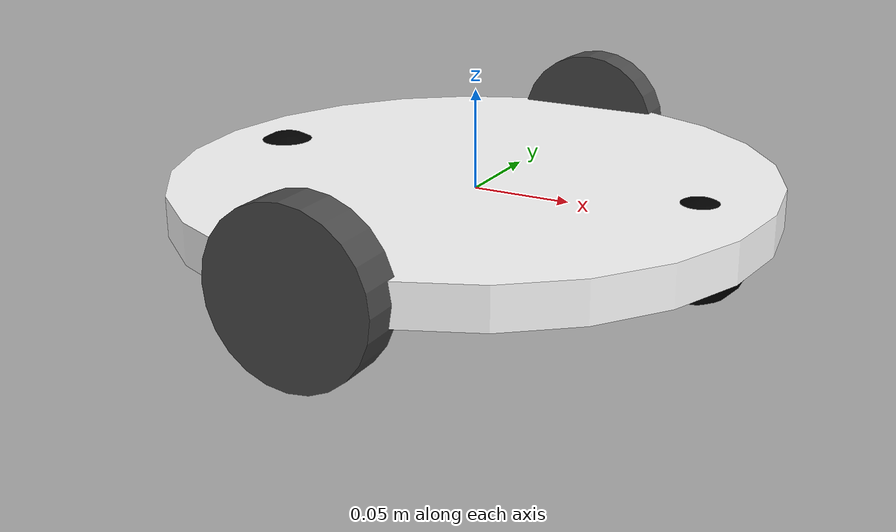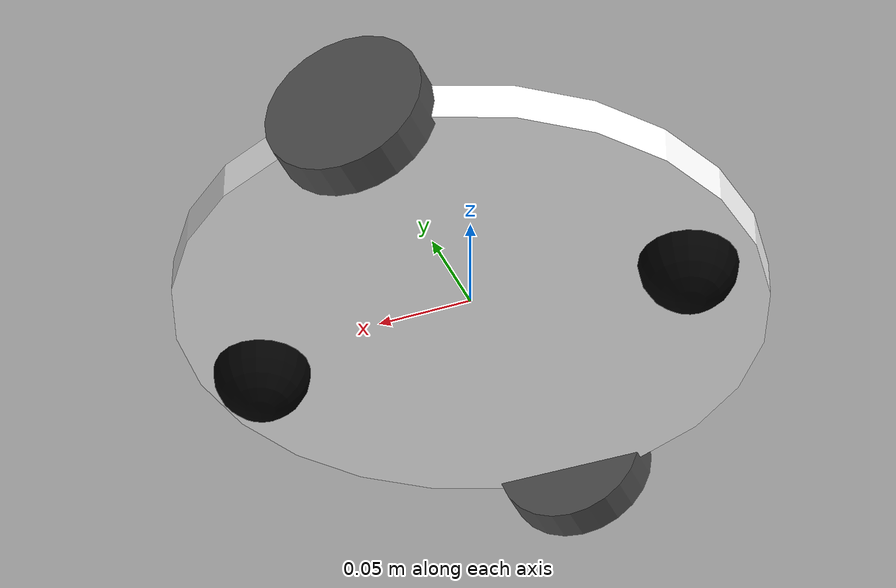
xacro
<?xml version="1.0"?>
<robot name="differential_wheeled_robot" xmlns:xacro="http://www.ros.org/wiki/xacro">

	<xacro:include filename="$(find naverr_description)/urdf/naverr.gazebo" />

	<!-- Defining the colors used in this robot -->
	<material name="Black">
		<color rgba="0.0 0.0 0.0 1.0"/>
	</material>

	<material name="Red">
		<color rgba="0.8 0.0 0.0 1.0"/>
	</material>

	<material name="White">
		<color rgba="1.0 1.0 1.0 1.0"/>
	</material>

	<material name="Blue">
		<color rgba="0.0 0.0 0.8 1.0"/>
	</material>

	<!-- PROPERTY LIST -->
	<!--All units in m-kg-s-radians unit system -->
	<property name="M_PI" value="3.1415926535897931" />
	<property name="M_PI_2" value="1.570796327" />
	<property name="DEG_TO_RAD" value="0.017453293" />

	<!-- Main body radius and height -->
	<!-- Main Body Cylinder base   -->
	<property name="base_height" value="0.02" />
	<property name="base_radius" value="0.15" />
	<property name="base_mass" value="5" />
	<!-- in kg-->

	<!-- caster wheel radius and height -->
	<!-- caster wheel mass -->
	<property name="caster_f_height" value="0.04" />
	<property name="caster_f_radius" value="0.025" />
	<property name="caster_f_mass" value="0.5" />
	<!-- in kg-->

	<!-- caster wheel radius and height -->
	<!-- caster wheel mass -->
	<property name="caster_b_height" value="0.04" />
	<property name="caster_b_radius" value="0.025" />
	<property name="caster_b_mass" value="0.5" />
	<!-- in kg-->

	<!-- Wheels -->

	<property name="wheel_mass" value="2.5" /> --> <!-- in kg-->

	<property name="base_x_origin_to_wheel_origin" value="0.25" />
	<property name="base_y_origin_to_wheel_origin" value="0.3" />
	<property name="base_z_origin_to_wheel_origin" value="0.0" />

	<!-- Macro for calculating inertia of cylinder -->
	<macro name="cylinder_inertia" params="m r h">
		<inertia  ixx="${m*(3*r*r+h*h)/12}" ixy = "0" ixz = "0"
              iyy="${m*(3*r*r+h*h)/12}" iyz = "0"
              izz="${m*r*r/2}" />
	</macro>

	<!-- BASE-FOOTPRINT -->
	<!-- base_footprint is a fictitious link(frame) that is on the ground right below base_link origin -->

	<!-- BASE-LINK -->
	<!--Actual body/chassis of the robot-->
	<link name="base_link">
		<inertial>
			<mass value="${base_mass}" />
			<origin xyz="0 0 0" />
			<!--The 3x3 rotational inertia matrix. -->
			<cylinder_inertia  m="${base_mass}" r="${base_radius}" h="${base_height}" />

		</inertial>
		<visual>
			<origin xyz="0 0 0" rpy="0 0 0" />
			<geometry>

				<cylinder length="${base_height}" radius="${base_radius}" />

			</geometry>
			<material name="White" />
		</visual>
		<collision>
			<origin xyz="0 0 0" rpy="0 0 0 " />
			<geometry>

				<cylinder length="${base_height}" radius="${base_radius}" />

			</geometry>
		</collision>
	</link>
	<gazebo reference="base_link">
		<material>Gazebo/White</material>
		<turnGravityOff>false</turnGravityOff>
	</gazebo>

	<!--Caster front  -->

	<link name="caster_front_link">

		<visual>
			<origin xyz="0 0.02 0" rpy="${M_PI/2} 0 0" />
			<geometry>
				<sphere radius="${caster_f_radius}" />
			</geometry>
			<material name="Black" />
		</visual>

		<collision>
			<geometry>

				<sphere radius="${caster_f_radius}" />

			</geometry>
			<origin xyz="0 0.02 0" rpy="${M_PI/2} 0 0" />
		</collision>
		<inertial>
			<mass value="${caster_f_mass}" />
			<origin xyz="0 0 0" />
			<inertia ixx="0.001" ixy="0.0" ixz="0.0"
                 iyy="0.001" iyz="0.0"
                 izz="0.001" />
		</inertial>
	</link>

	<joint name="caster_front_joint" type="fixed">
		<parent link="base_link"/>
		<child link="caster_front_link"/>
		<origin xyz="0.115 0.0 0.007" rpy="${-M_PI/2} 0 0"/>
	</joint>

	<gazebo reference="caster_front_link">
		<turnGravityOff>false</turnGravityOff>
	</gazebo>

	<!--Caster back  -->

	<link name="caster_back_link">

		<visual>
			<origin xyz="0.02 0.02 0 " rpy="${M_PI/2} 0 0" />

			<geometry>

				<sphere radius="${caster_b_radius}" />

			</geometry>
			<material name="Black" />
		</visual>

		<collision>
			<geometry>
				<sphere radius="${caster_b_radius}" />
			</geometry>
			<origin xyz="0 0.02 0 " rpy="${M_PI/2} 0 0" />
		</collision>
		<inertial>
			<mass value="${caster_b_mass}" />
			<origin xyz="0 0 0" />
			<inertia ixx="0.001" ixy="0.0" ixz="0.0"
                 iyy="0.001" iyz="0.0"
                 izz="0.001" />
		</inertial>
	</link>

	<joint name="caster_back_joint" type="fixed">
		<parent link="base_link"/>
		<child link="caster_back_link"/>
		<origin xyz="-0.135 0.0 0.009" rpy="${-M_PI/2} 0 0"/>
	</joint>

	<gazebo reference="caster_back_link">
		<turnGravityOff>false</turnGravityOff>
	</gazebo>

	<!-- Wheel Definitions -->

	<wheel fb="front" lr="right" parent="base_link" translateX="0" translateY="0.5" flipY="1"/>
	<wheel fb="front" lr="left" parent="base_link" translateX="0" translateY="-0.5" flipY="1"/>

</robot>

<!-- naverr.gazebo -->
<robot name="wheel" xmlns:xacro="http://www.ros.org/wiki/xacro">

	<!-- Wheels -->
	<property name="wheel_radius" value="0.04" />
	<property name="wheel_height" value="0.02" />
	<property name="wheel_mass" value="2.5" /> <!-- in kg-->

	<property name="base_x_origin_to_wheel_origin" value="0.25" />
	<property name="base_y_origin_to_wheel_origin" value="0.3" />
	<property name="base_z_origin_to_wheel_origin" value="0.0" />

	<macro name="cylinder_inertia" params="m r h">
		<inertia  ixx="${m*(3*r*r+h*h)/12}" ixy = "0" ixz = "0"
				iyy="${m*(3*r*r+h*h)/12}" iyz = "0"
				izz="${m*r*r/2}" />
	</macro>

	<xacro:macro name="wheel" params="fb lr parent translateX translateY flipY"> <!--fb : front, back ; lr: left, right -->
		<link name="${fb}_${lr}_wheel">
			<visual>
				<origin xyz="0 0 0" rpy="${flipY*M_PI/2} 0  0 " />
				<geometry>
					<cylinder length="${wheel_height}" radius="${wheel_radius}" />
				</geometry>
				<material name="DarkGray" />
			</visual>
			<collision>
				<origin xyz="0 0 0" rpy="${flipY*M_PI/2} 0 0 " />
				<geometry>
					<cylinder length="${wheel_height}" radius="${wheel_radius}" />
				</geometry>
			</collision>
			<inertial>
				<mass value="${wheel_mass}" />
				<origin xyz="0 0 0" />
				<cylinder_inertia  m="${wheel_mass}" r="${wheel_radius}" h="${wheel_height}" />
			</inertial>
		</link>

		<gazebo reference="${fb}_${lr}_wheel">
			<mu1 value="1.0"/>
			<mu2 value="1.0"/>
			<kp  value="10000000.0" />
			<kd  value="1.0" />
			<fdir1 value="1 0 0"/>
			<material>Gazebo/Grey</material>
			<turnGravityOff>false</turnGravityOff>
			<dampingFactor>0.1</dampingFactor>
		</gazebo>

		<joint name="${fb}_${lr}_wheel_joint" type="continuous">
			<parent link="${parent}"/>
			<child link="${fb}_${lr}_wheel"/>
			<origin xyz="${translateX * base_x_origin_to_wheel_origin} ${translateY * base_y_origin_to_wheel_origin} ${base_z_origin_to_wheel_origin}" rpy="0 0 0" />
			<axis xyz="0 1 0" rpy="0  0" />
			<limit effort="100" velocity="100"/>
			<joint_properties damping="0.0" friction="0.0"/>
		</joint>

	</xacro:macro>

	<gazebo reference="base_link">
		<sensor type="contact" name="bump_sensor">
			<always_on>true</always_on>
			<update_rate>1.0</update_rate>
			<contact>
				<collision>base_link_collision</collision>
			</contact>
			<plugin name="gazebo_ros_bumper_controller" filename="libgazebo_ros_bumper.so">
				<bumperTopicName>bumper_vals</bumperTopicName>
				<frameName>world</frameName>
			</plugin>
		</sensor>
	</gazebo>

</robot>
